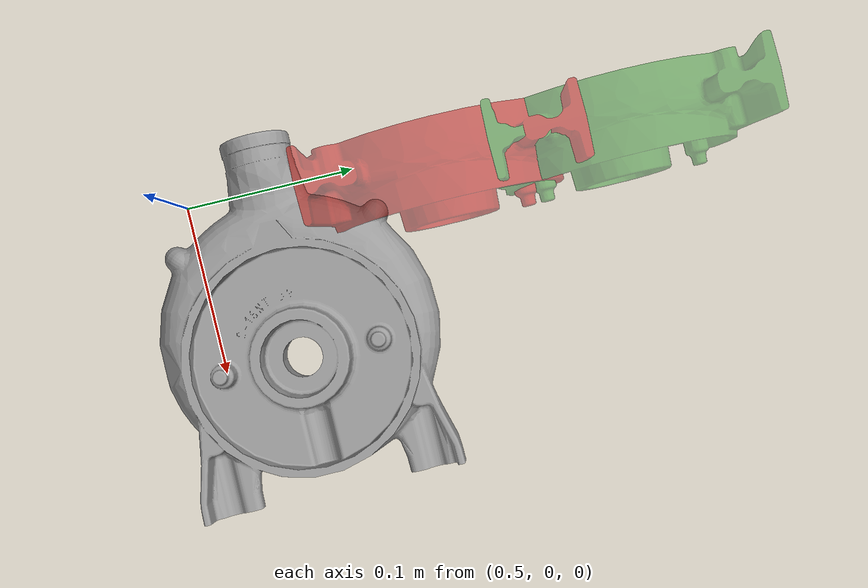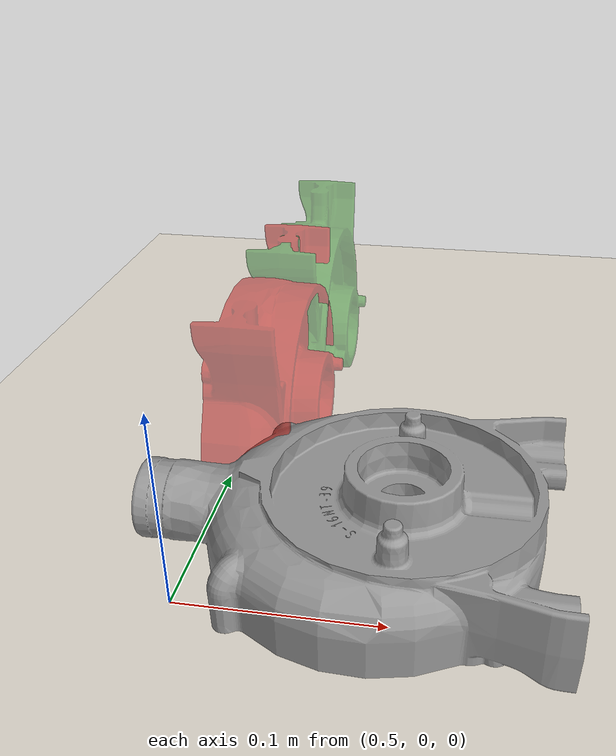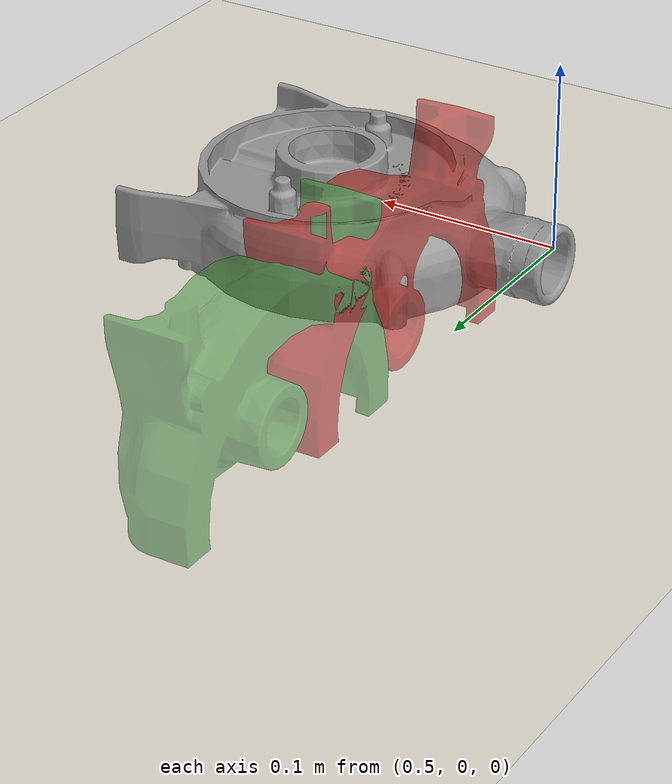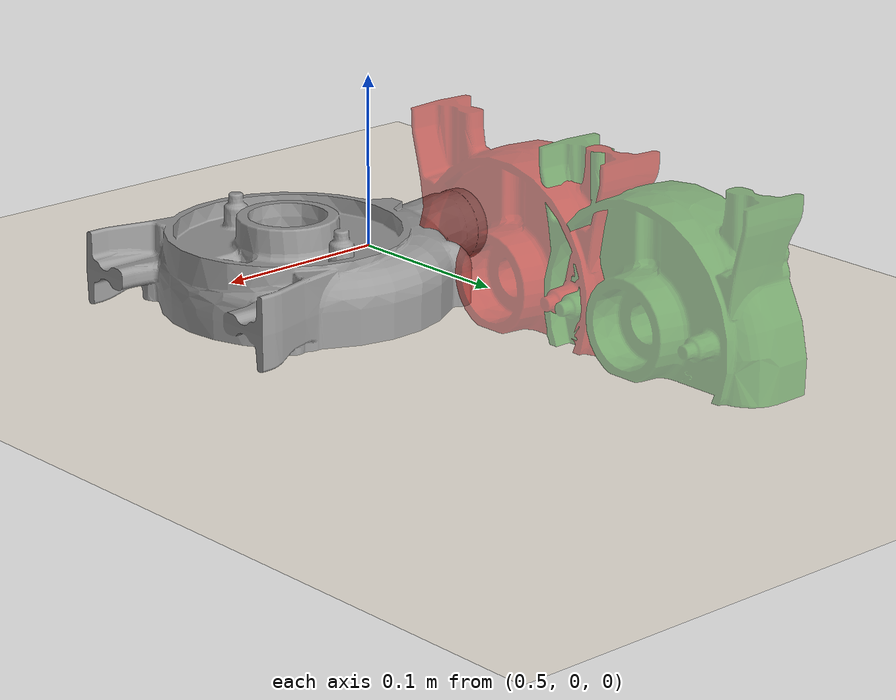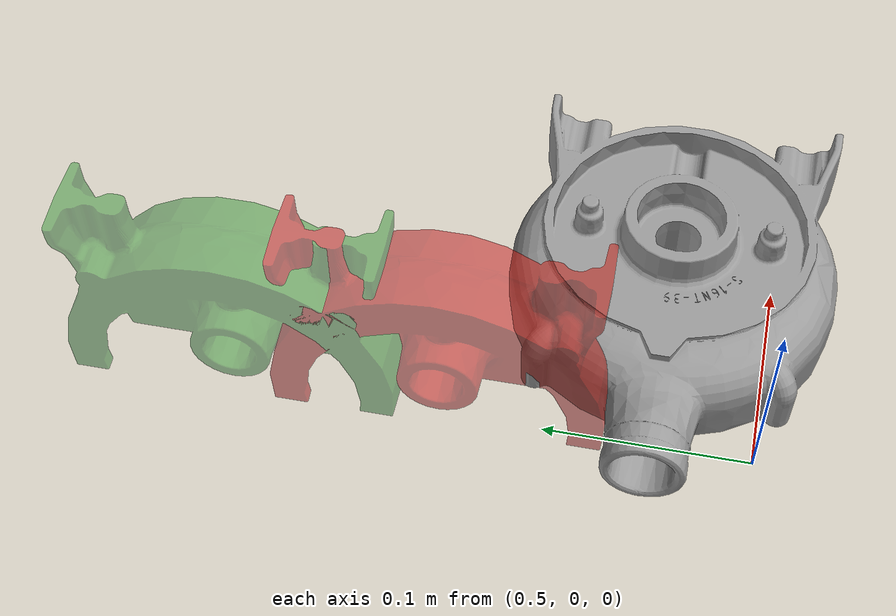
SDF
<?xml version="1.0"?>
<sdf version="1.9">
  <world name="gz_moveit2_manipulation_1">

    <!-- Physics -->
    <plugin filename="gz-sim-physics-system" name="gz::sim::systems::Physics">
      <engine>
        <filename>gz-physics-dartsim-plugin</filename>
      </engine>
      <dart>
        <collision_detector>bullet</collision_detector>
      </dart>
    </plugin>
    <physics name="physics_config" type="dart">
      <max_step_size>0.002</max_step_size>
      <real_time_factor>100.0</real_time_factor>
    </physics>

    <!-- Scene -->
    <plugin filename="gz-sim-scene-broadcaster-system" name="gz::sim::systems::SceneBroadcaster">
    </plugin>
    <scene>
      <ambient>0.992 0.969 0.929</ambient>
      <background>0.992 0.969 0.929</background><!-- this does actually do it -->
      <grid>false</grid>
    </scene>

    <!-- User Commands (transform control) -->
    <plugin filename="gz-sim-user-commands-system" name="gz::sim::systems::UserCommands">
    </plugin>

    <!-- Illumination -->
    <light type="directional" name="sun">
      <cast_shadows>true</cast_shadows>
      <pose>0 0 10 0 0 0</pose>
      <diffuse>0.8 0.8 0.8 1</diffuse>
      <specular>0.2 0.2 0.2 1</specular>
      <attenuation>
        <range>1000</range>
        <constant>0.9</constant>
        <linear>0.01</linear>
        <quadratic>0.001</quadratic>
      </attenuation>
      <direction>-0.3 0.3 -0.9</direction>
    </light>

    <!-- Models -->
    <!-- Ground -->
    <model name="ground_plane">
      <pose>0.5 0 0 0 0 0</pose>
      <static>true</static>
      <link name="ground_plane_link">
        <collision name="ground_plane_collision">
          <pose>0 0 -0.05 0 0 0</pose>
          <geometry>
            <box>
              <size>5 2 0.1</size>
            </box>
          </geometry>
        </collision>
        <visual name="ground_plane_visual">
          <geometry>
            <plane>
              <normal>0 0 1</normal>
              <size>5 2</size>
            </plane>
          </geometry>
          <material>
            <diffuse>0.984 0.898 0.737 1</diffuse><!--BG-->
            <specular>0.8 0.8 0.8 1</specular>
          </material>
        </visual>
      </link>
    </model>
    <model name="underground_plane">
      <pose>0.5 0 -10.0 0 0 0</pose>
      <static>true</static>
      <link name="underground_plane_link">
        <collision name="underground_plane_collision">
          <geometry>
            <plane>
              <normal>0 0 1</normal>
            </plane>
          </geometry>
        </collision>
      </link>
    </model>

    <!-- Object to interact -->
    <model name="interaction_cube">
      <pose>0.6 0.05 0.00594 0.0 -1.57 0.0</pose>
      <link name="interaction_cube_link">
        <inertial>
          <origin rpy="0 0 0" xyz="0.016 0.0 0.005"/>
          <inertia>
            <ixx>0.00025</ixx>
            <ixy>0.0</ixy>
            <ixz>0.0</ixz>
            <iyy>0.00025</iyy>
            <iyz>0.0</iyz>
            <izz>0.00025</izz>
          </inertia>
          <mass>0.2</mass>
        </inertial>
        <collision name="interaction_cube_collision">
          <pose> 0 0 0 0 0 0 </pose>pose>
          <!-- pose in visual and collision should be possible -->
          <geometry>
          <!---test visualizing part mesh -->
          <mesh>
            <uri>s-16nt-39.dae</uri>
           </mesh>
          </geometry>
          <surface>
            <friction>
              <ode>
                <mu>2.0</mu>
                <mu2>2.0</mu2>
              </ode>
            </friction>
          </surface>
        </collision>
        <visual name="interaction_cube_visual">
          <pose> 0 0 0 0 0 0 </pose>pose>
          <!-- pose in visual and collision should be possible -->
          <geometry>
          <!---test visualizing part mesh -->
          <mesh>
            <uri>s-16nt-39.dae</uri>
           </mesh>
          </geometry>
          <material>
            <diffuse>0.6 0.6 0.6 1</diffuse><!--Grey 40-->
            <specular>0.7 0.4 0.4 1</specular>
          </material>
        </visual>
      </link>

            <!-- Pose publisher plugin, used to determine the target pose to reach -->
      <plugin filename="gz-sim-pose-publisher-system" name="gz::sim::systems::PosePublisher">
        <publish_nested_model_pose>true</publish_nested_model_pose>
        <publish_link_pose>false</publish_link_pose>
        <publish_collision_pose>false</publish_collision_pose>
        <publish_visual_pose>false</publish_visual_pose>
      </plugin>

    </model>

    <!-- Object to interact_visual_start -->
    <model name="visual_cube_start">
      <pose>0.5 0.15 0.025 -3.14 0.0 0.0</pose>
      <static>true</static>
      <link name="interaction_cube_start_link">
        <visual name="interaction_cube_visual_start">
          <geometry>
          <!---test visualizing part mesh -->
          <mesh>
            <uri>s-16nt-39.dae</uri>
           </mesh>
          </geometry>
          <material>
            <diffuse>0.78 0.039 0.0 0.5</diffuse> <!--RED-->
            <specular>0.7 0.4 0.4 0.5</specular>
          </material>
        </visual>
      </link>
    </model>

    <!-- Object to interact_visual_goal -->
    <model name="visual_cube_goal">
      <pose>0.5 0.25 0.025 -3.14 0.0 0.0</pose>
      <static>true</static>
      <link name="interaction_cube_goal_link">
        <visual name="interaction_cube_visual_goal">
          <geometry>
          <!---test visualizing part mesh -->
          <mesh>
            <uri>s-16nt-39.dae</uri>
           </mesh>
          </geometry>
          <material>
            <diffuse>0.212 0.58 0.141 0.5</diffuse> <!--Green-->
            <specular>0.4 0.7 0.4 0.5</specular>
          </material>
        </visual>
      </link>
    </model>

  </world>

</sdf>
